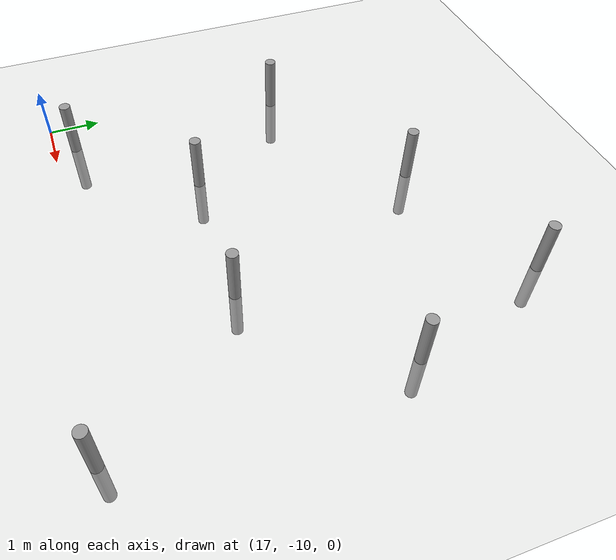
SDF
<sdf version="1.6">
 <world name="default">
  <model name="ground_plane">
   <static>1</static>
   <link name="link">
    <collision name="collision">
     <geometry><plane><normal>0 0 1</normal><size>100 100</size></plane></geometry>
     <surface>
      <contact><collide_bitmask>65535</collide_bitmask></contact>
      <friction><ode><mu>100</mu><mu2>50</mu2></ode></friction>
     </surface>
    </collision>
    <visual name="visual">
     <cast_shadows>0</cast_shadows>
     <geometry><plane><normal>0 0 1</normal><size>100 100</size></plane></geometry>
     <material>
      <script><uri>file://media/materials/scripts/gazebo.material</uri><name>Gazebo/Grey</name></script>
     </material>
    </visual>
   </link>
  </model>
  <model name="poleStat_14">
   <link name="link">
    <inertial>
     <mass>0.0953443</mass>
     <inertia>
      <ixx>0.0359089</ixx>
      <ixy>0</ixy>
      <ixz>0</ixz>
      <iyy>0.0359089</iyy>
      <iyz>0</iyz>
      <izz>0.000536427</izz>
     </inertia>
    </inertial>
    <visual name="visual">
     <geometry><cylinder><radius>0.106077</radius><length>2.11795</length></cylinder></geometry>
     <material>
      <script><name>Gazebo/Grey</name><uri>file://media/materials/scripts/gazebo.material</uri></script>
     </material>
    </visual>
    <collision name="collision">
     <geometry><cylinder><radius>0.106077</radius><length>2.11795</length></cylinder></geometry>
     <surface>
      <friction>
       <ode><mu>1</mu><mu2>1</mu2><fdir1>0 0 0</fdir1><slip1>0</slip1><slip2>0</slip2></ode>
       <torsional>
        <coefficient>1</coefficient>
        <patch_radius>0</patch_radius>
        <surface_radius>0</surface_radius>
        <use_patch_radius>1</use_patch_radius>
        <ode><slip>0</slip></ode>
       </torsional>
      </friction>
      <bounce><restitution_coefficient>0</restitution_coefficient><threshold>1e+06</threshold></bounce>
      <contact>
       <collide_without_contact>0</collide_without_contact>
       <collide_without_contact_bitmask>1</collide_without_contact_bitmask>
       <collide_bitmask>1</collide_bitmask>
       <ode>
        <soft_cfm>0</soft_cfm>
        <soft_erp>0.2</soft_erp>
        <kp>1e+13</kp>
        <kd>1</kd>
        <max_vel>0.01</max_vel>
        <min_depth>0</min_depth>
       </ode>
       <bullet>
        <split_impulse>1</split_impulse>
        <split_impulse_penetration_threshold>-0.01</split_impulse_penetration_threshold>
        <soft_cfm>0</soft_cfm>
        <soft_erp>0.2</soft_erp>
        <kp>1e+13</kp>
        <kd>1</kd>
       </bullet>
      </contact>
     </surface>
    </collision>
   </link>
   <static>1</static>
   <pose>23.6183 -2.45243 0 0 -0 0</pose>
  </model>
  <model name="poleStat_15">
   <link name="link">
    <inertial>
     <mass>0.0953443</mass>
     <inertia>
      <ixx>0.0359089</ixx>
      <ixy>0</ixy>
      <ixz>0</ixz>
      <iyy>0.0359089</iyy>
      <iyz>0</iyz>
      <izz>0.000536427</izz>
     </inertia>
    </inertial>
    <visual name="visual">
     <geometry><cylinder><radius>0.106077</radius><length>2.11795</length></cylinder></geometry>
     <material>
      <script><name>Gazebo/Grey</name><uri>file://media/materials/scripts/gazebo.material</uri></script>
     </material>
    </visual>
    <collision name="collision">
     <geometry><cylinder><radius>0.106077</radius><length>2.11795</length></cylinder></geometry>
     <surface>
      <friction>
       <ode><mu>1</mu><mu2>1</mu2><fdir1>0 0 0</fdir1><slip1>0</slip1><slip2>0</slip2></ode>
       <torsional>
        <coefficient>1</coefficient>
        <patch_radius>0</patch_radius>
        <surface_radius>0</surface_radius>
        <use_patch_radius>1</use_patch_radius>
        <ode><slip>0</slip></ode>
       </torsional>
      </friction>
      <bounce><restitution_coefficient>0</restitution_coefficient><threshold>1e+06</threshold></bounce>
      <contact>
       <collide_without_contact>0</collide_without_contact>
       <collide_without_contact_bitmask>1</collide_without_contact_bitmask>
       <collide_bitmask>1</collide_bitmask>
       <ode>
        <soft_cfm>0</soft_cfm>
        <soft_erp>0.2</soft_erp>
        <kp>1e+13</kp>
        <kd>1</kd>
        <max_vel>0.01</max_vel>
        <min_depth>0</min_depth>
       </ode>
       <bullet>
        <split_impulse>1</split_impulse>
        <split_impulse_penetration_threshold>-0.01</split_impulse_penetration_threshold>
        <soft_cfm>0</soft_cfm>
        <soft_erp>0.2</soft_erp>
        <kp>1e+13</kp>
        <kd>1</kd>
       </bullet>
      </contact>
     </surface>
    </collision>
   </link>
   <static>1</static>
   <pose>20.6727 -3.50793 0 0 -0 0</pose>
  </model>
  <model name="poleStat_16">
   <link name="link">
    <inertial>
     <mass>0.0953443</mass>
     <inertia>
      <ixx>0.0359089</ixx>
      <ixy>0</ixy>
      <ixz>0</ixz>
      <iyy>0.0359089</iyy>
      <iyz>0</iyz>
      <izz>0.000536427</izz>
     </inertia>
    </inertial>
    <visual name="visual">
     <geometry><cylinder><radius>0.106077</radius><length>2.11795</length></cylinder></geometry>
     <material>
      <script><name>Gazebo/Grey</name><uri>file://media/materials/scripts/gazebo.material</uri></script>
     </material>
    </visual>
    <collision name="collision">
     <geometry><cylinder><radius>0.106077</radius><length>2.11795</length></cylinder></geometry>
     <surface>
      <friction>
       <ode><mu>1</mu><mu2>1</mu2><fdir1>0 0 0</fdir1><slip1>0</slip1><slip2>0</slip2></ode>
       <torsional>
        <coefficient>1</coefficient>
        <patch_radius>0</patch_radius>
        <surface_radius>0</surface_radius>
        <use_patch_radius>1</use_patch_radius>
        <ode><slip>0</slip></ode>
       </torsional>
      </friction>
      <bounce><restitution_coefficient>0</restitution_coefficient><threshold>1e+06</threshold></bounce>
      <contact>
       <collide_without_contact>0</collide_without_contact>
       <collide_without_contact_bitmask>1</collide_without_contact_bitmask>
       <collide_bitmask>1</collide_bitmask>
       <ode>
        <soft_cfm>0</soft_cfm>
        <soft_erp>0.2</soft_erp>
        <kp>1e+13</kp>
        <kd>1</kd>
        <max_vel>0.01</max_vel>
        <min_depth>0</min_depth>
       </ode>
       <bullet>
        <split_impulse>1</split_impulse>
        <split_impulse_penetration_threshold>-0.01</split_impulse_penetration_threshold>
        <soft_cfm>0</soft_cfm>
        <soft_erp>0.2</soft_erp>
        <kp>1e+13</kp>
        <kd>1</kd>
       </bullet>
      </contact>
     </surface>
    </collision>
   </link>
   <static>1</static>
   <pose>17.5855 -5.27205 0 0 -0 0</pose>
  </model>
  <model name="poleStat_17">
   <link name="link">
    <inertial>
     <mass>0.0953443</mass>
     <inertia>
      <ixx>0.0359089</ixx>
      <ixy>0</ixy>
      <ixz>0</ixz>
      <iyy>0.0359089</iyy>
      <iyz>0</iyz>
      <izz>0.000536427</izz>
     </inertia>
    </inertial>
    <visual name="visual">
     <geometry><cylinder><radius>0.106077</radius><length>2.11795</length></cylinder></geometry>
     <material>
      <script><name>Gazebo/Grey</name><uri>file://media/materials/scripts/gazebo.material</uri></script>
     </material>
    </visual>
    <collision name="collision">
     <geometry><cylinder><radius>0.106077</radius><length>2.11795</length></cylinder></geometry>
     <surface>
      <friction>
       <ode><mu>1</mu><mu2>1</mu2><fdir1>0 0 0</fdir1><slip1>0</slip1><slip2>0</slip2></ode>
       <torsional>
        <coefficient>1</coefficient>
        <patch_radius>0</patch_radius>
        <surface_radius>0</surface_radius>
        <use_patch_radius>1</use_patch_radius>
        <ode><slip>0</slip></ode>
       </torsional>
      </friction>
      <bounce><restitution_coefficient>0</restitution_coefficient><threshold>1e+06</threshold></bounce>
      <contact>
       <collide_without_contact>0</collide_without_contact>
       <collide_without_contact_bitmask>1</collide_without_contact_bitmask>
       <collide_bitmask>1</collide_bitmask>
       <ode>
        <soft_cfm>0</soft_cfm>
        <soft_erp>0.2</soft_erp>
        <kp>1e+13</kp>
        <kd>1</kd>
        <max_vel>0.01</max_vel>
        <min_depth>0</min_depth>
       </ode>
       <bullet>
        <split_impulse>1</split_impulse>
        <split_impulse_penetration_threshold>-0.01</split_impulse_penetration_threshold>
        <soft_cfm>0</soft_cfm>
        <soft_erp>0.2</soft_erp>
        <kp>1e+13</kp>
        <kd>1</kd>
       </bullet>
      </contact>
     </surface>
    </collision>
   </link>
   <static>1</static>
   <pose>19.5522 -7.44501 0 0 -0 0</pose>
  </model>
  <model name="poleStat_18">
   <link name="link">
    <inertial>
     <mass>0.0953443</mass>
     <inertia>
      <ixx>0.0359089</ixx>
      <ixy>0</ixy>
      <ixz>0</ixz>
      <iyy>0.0359089</iyy>
      <iyz>0</iyz>
      <izz>0.000536427</izz>
     </inertia>
    </inertial>
    <visual name="visual">
     <geometry><cylinder><radius>0.106077</radius><length>2.11795</length></cylinder></geometry>
     <material>
      <script><name>Gazebo/Grey</name><uri>file://media/materials/scripts/gazebo.material</uri></script>
     </material>
    </visual>
    <collision name="collision">
     <geometry><cylinder><radius>0.106077</radius><length>2.11795</length></cylinder></geometry>
     <surface>
      <friction>
       <ode><mu>1</mu><mu2>1</mu2><fdir1>0 0 0</fdir1><slip1>0</slip1><slip2>0</slip2></ode>
       <torsional>
        <coefficient>1</coefficient>
        <patch_radius>0</patch_radius>
        <surface_radius>0</surface_radius>
        <use_patch_radius>1</use_patch_radius>
        <ode><slip>0</slip></ode>
       </torsional>
      </friction>
      <bounce><restitution_coefficient>0</restitution_coefficient><threshold>1e+06</threshold></bounce>
      <contact>
       <collide_without_contact>0</collide_without_contact>
       <collide_without_contact_bitmask>1</collide_without_contact_bitmask>
       <collide_bitmask>1</collide_bitmask>
       <ode>
        <soft_cfm>0</soft_cfm>
        <soft_erp>0.2</soft_erp>
        <kp>1e+13</kp>
        <kd>1</kd>
        <max_vel>0.01</max_vel>
        <min_depth>0</min_depth>
       </ode>
       <bullet>
        <split_impulse>1</split_impulse>
        <split_impulse_penetration_threshold>-0.01</split_impulse_penetration_threshold>
        <soft_cfm>0</soft_cfm>
        <soft_erp>0.2</soft_erp>
        <kp>1e+13</kp>
        <kd>1</kd>
       </bullet>
      </contact>
     </surface>
    </collision>
   </link>
   <static>1</static>
   <pose>17.6852 -9.56859 0 0 -0 0</pose>
  </model>
  <model name="poleStat_19">
   <link name="link">
    <inertial>
     <mass>0.0953443</mass>
     <inertia>
      <ixx>0.0359089</ixx>
      <ixy>0</ixy>
      <ixz>0</ixz>
      <iyy>0.0359089</iyy>
      <iyz>0</iyz>
      <izz>0.000536427</izz>
     </inertia>
    </inertial>
    <visual name="visual">
     <geometry><cylinder><radius>0.106077</radius><length>2.11795</length></cylinder></geometry>
     <material>
      <script><name>Gazebo/Grey</name><uri>file://media/materials/scripts/gazebo.material</uri></script>
     </material>
    </visual>
    <collision name="collision">
     <geometry><cylinder><radius>0.106077</radius><length>2.11795</length></cylinder></geometry>
     <surface>
      <friction>
       <ode><mu>1</mu><mu2>1</mu2><fdir1>0 0 0</fdir1><slip1>0</slip1><slip2>0</slip2></ode>
       <torsional>
        <coefficient>1</coefficient>
        <patch_radius>0</patch_radius>
        <surface_radius>0</surface_radius>
        <use_patch_radius>1</use_patch_radius>
        <ode><slip>0</slip></ode>
       </torsional>
      </friction>
      <bounce><restitution_coefficient>0</restitution_coefficient><threshold>1e+06</threshold></bounce>
      <contact>
       <collide_without_contact>0</collide_without_contact>
       <collide_without_contact_bitmask>1</collide_without_contact_bitmask>
       <collide_bitmask>1</collide_bitmask>
       <ode>
        <soft_cfm>0</soft_cfm>
        <soft_erp>0.2</soft_erp>
        <kp>1e+13</kp>
        <kd>1</kd>
        <max_vel>0.01</max_vel>
        <min_depth>0</min_depth>
       </ode>
       <bullet>
        <split_impulse>1</split_impulse>
        <split_impulse_penetration_threshold>-0.01</split_impulse_penetration_threshold>
        <soft_cfm>0</soft_cfm>
        <soft_erp>0.2</soft_erp>
        <kp>1e+13</kp>
        <kd>1</kd>
       </bullet>
      </contact>
     </surface>
    </collision>
   </link>
   <static>1</static>
   <pose>24.6032 -5.24956 0 0 -0 0</pose>
  </model>
  <model name="poleStat_20">
   <link name="link">
    <inertial>
     <mass>0.0953443</mass>
     <inertia>
      <ixx>0.0359089</ixx>
      <ixy>0</ixy>
      <ixz>0</ixz>
      <iyy>0.0359089</iyy>
      <iyz>0</iyz>
      <izz>0.000536427</izz>
     </inertia>
    </inertial>
    <visual name="visual">
     <geometry><cylinder><radius>0.106077</radius><length>2.11795</length></cylinder></geometry>
     <material>
      <script><name>Gazebo/Grey</name><uri>file://media/materials/scripts/gazebo.material</uri></script>
     </material>
    </visual>
    <collision name="collision">
     <geometry><cylinder><radius>0.106077</radius><length>2.11795</length></cylinder></geometry>
     <surface>
      <friction>
       <ode><mu>1</mu><mu2>1</mu2><fdir1>0 0 0</fdir1><slip1>0</slip1><slip2>0</slip2></ode>
       <torsional>
        <coefficient>1</coefficient>
        <patch_radius>0</patch_radius>
        <surface_radius>0</surface_radius>
        <use_patch_radius>1</use_patch_radius>
        <ode><slip>0</slip></ode>
       </torsional>
      </friction>
      <bounce><restitution_coefficient>0</restitution_coefficient><threshold>1e+06</threshold></bounce>
      <contact>
       <collide_without_contact>0</collide_without_contact>
       <collide_without_contact_bitmask>1</collide_without_contact_bitmask>
       <collide_bitmask>1</collide_bitmask>
       <ode>
        <soft_cfm>0</soft_cfm>
        <soft_erp>0.2</soft_erp>
        <kp>1e+13</kp>
        <kd>1</kd>
        <max_vel>0.01</max_vel>
        <min_depth>0</min_depth>
       </ode>
       <bullet>
        <split_impulse>1</split_impulse>
        <split_impulse_penetration_threshold>-0.01</split_impulse_penetration_threshold>
        <soft_cfm>0</soft_cfm>
        <soft_erp>0.2</soft_erp>
        <kp>1e+13</kp>
        <kd>1</kd>
       </bullet>
      </contact>
     </surface>
    </collision>
   </link>
   <static>1</static>
   <pose>22.414 -7.61441 0 0 -0 0</pose>
  </model>
  <model name="poleStat_21">
   <link name="link">
    <inertial>
     <mass>0.0953443</mass>
     <inertia>
      <ixx>0.0359089</ixx>
      <ixy>0</ixy>
      <ixz>0</ixz>
      <iyy>0.0359089</iyy>
      <iyz>0</iyz>
      <izz>0.000536427</izz>
     </inertia>
    </inertial>
    <visual name="visual">
     <geometry><cylinder><radius>0.106077</radius><length>2.11795</length></cylinder></geometry>
     <material>
      <script><name>Gazebo/Grey</name><uri>file://media/materials/scripts/gazebo.material</uri></script>
     </material>
    </visual>
    <collision name="collision">
     <geometry><cylinder><radius>0.106077</radius><length>2.11795</length></cylinder></geometry>
     <surface>
      <friction>
       <ode><mu>1</mu><mu2>1</mu2><fdir1>0 0 0</fdir1><slip1>0</slip1><slip2>0</slip2></ode>
       <torsional>
        <coefficient>1</coefficient>
        <patch_radius>0</patch_radius>
        <surface_radius>0</surface_radius>
        <use_patch_radius>1</use_patch_radius>
        <ode><slip>0</slip></ode>
       </torsional>
      </friction>
      <bounce><restitution_coefficient>0</restitution_coefficient><threshold>1e+06</threshold></bounce>
      <contact>
       <collide_without_contact>0</collide_without_contact>
       <collide_without_contact_bitmask>1</collide_without_contact_bitmask>
       <collide_bitmask>1</collide_bitmask>
       <ode>
        <soft_cfm>0</soft_cfm>
        <soft_erp>0.2</soft_erp>
        <kp>1e+13</kp>
        <kd>1</kd>
        <max_vel>0.01</max_vel>
        <min_depth>0</min_depth>
       </ode>
       <bullet>
        <split_impulse>1</split_impulse>
        <split_impulse_penetration_threshold>-0.01</split_impulse_penetration_threshold>
        <soft_cfm>0</soft_cfm>
        <soft_erp>0.2</soft_erp>
        <kp>1e+13</kp>
        <kd>1</kd>
       </bullet>
      </contact>
     </surface>
    </collision>
   </link>
   <static>1</static>
   <pose>24.6392 -10.3383 0 0 -0 0</pose>
  </model>
 </world>
</sdf>
